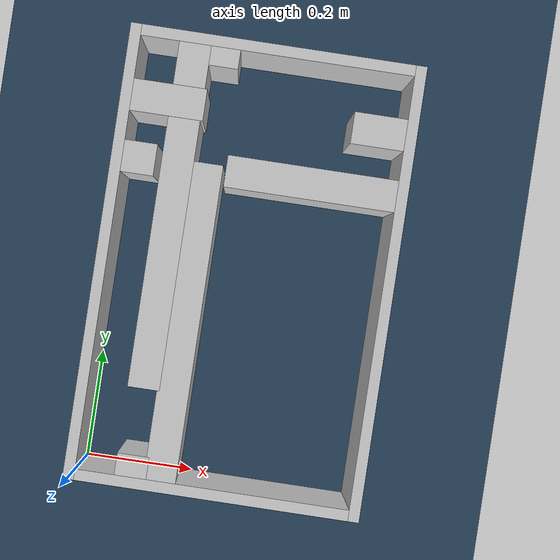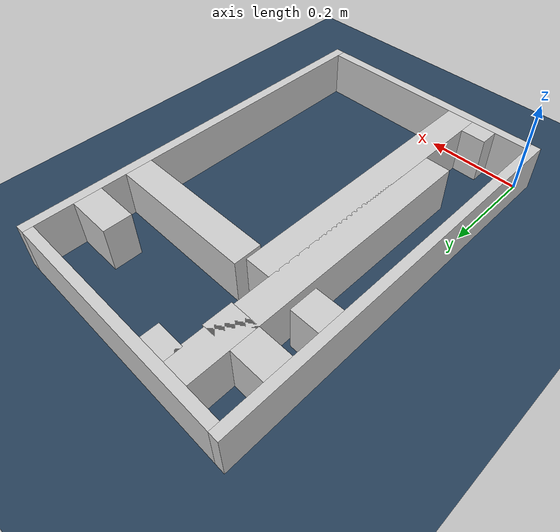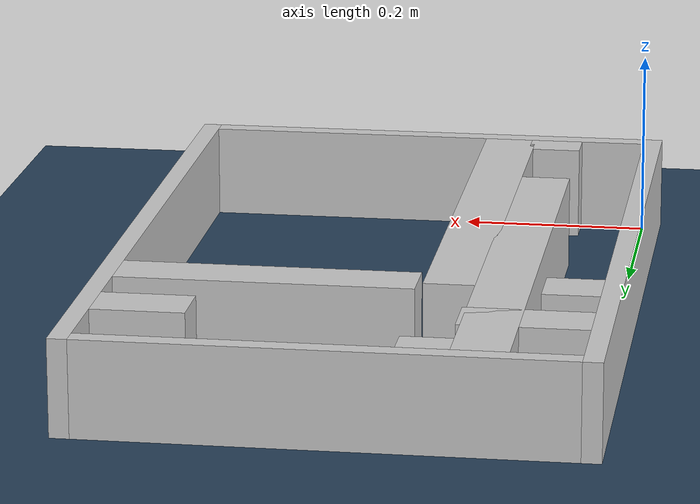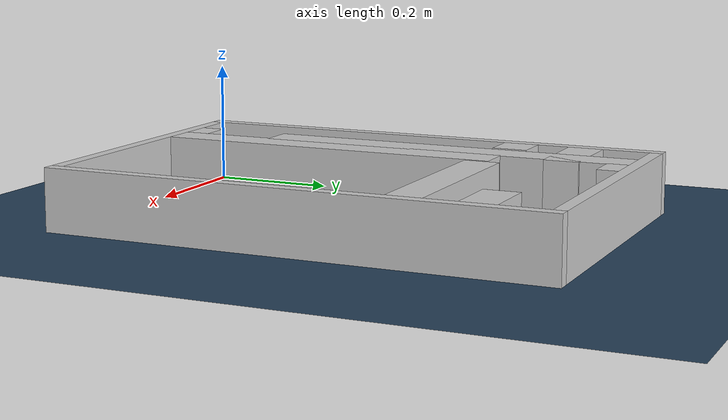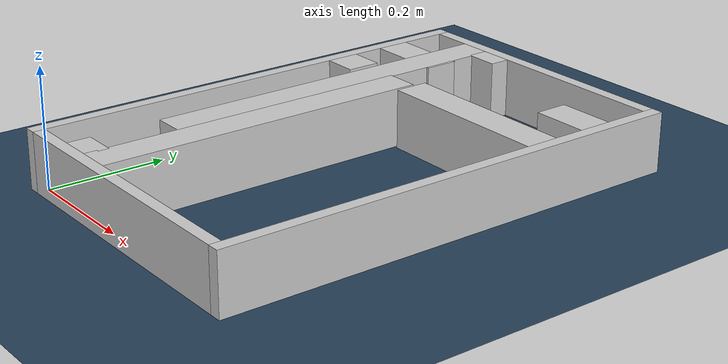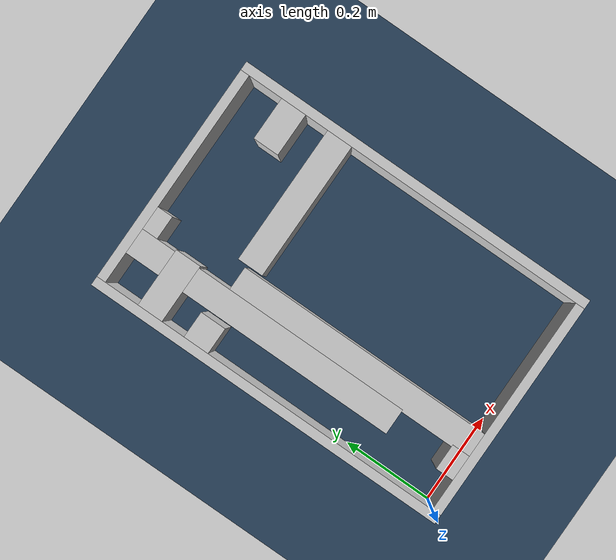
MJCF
<?xml version="1.0" ?>
<mujoco model="generated_real_template">
  <compiler angle="degree"/>
  <option timestep="0.002" integrator="implicitfast" iterations="100" cone="elliptic"/>
  <default>
    <geom density="1"/>
  </default>
  <asset>
    <texture builtin="gradient" height="3072" rgb1="0.3 0.5 0.7" rgb2="0 0 0" type="skybox" width="512"/>
    <texture builtin="checker" height="300" mark="edge" markrgb="0.8 0.8 0.8" name="groundplane" rgb1="0.2 0.3 0.4" rgb2="0.1 0.2 0.3" type="2d" width="300"/>
    <material name="groundplane" reflectance="0.2" texrepeat="5 5" texture="groundplane" texuniform="true"/>
  </asset>
  <worldbody>
    <light dir="0 0 -1" directional="true" pos="0 0 1.5"/>
    <geom name="floor" type="plane" condim="4" friction="0.5 0.005 0.001" material="groundplane" size="0 0 0.05"/>
    <body name="walls">
      <geom name="wall_boundary_left" type="box" condim="4" friction="1.0 0.005 0.0001" rgba="0.8 0.8 0.8 1" pos="-0.010000 0.387500 0.050000" euler="0 0 0.000000" size="0.010000 0.407500 0.050000"/>
      <geom name="wall_boundary_right" type="box" condim="4" friction="1.0 0.005 0.0001" rgba="0.8 0.8 0.8 1" pos="0.500000 0.387500 0.050000" euler="0 0 0.000000" size="0.010000 0.407500 0.050000"/>
      <geom name="wall_boundary_bottom" type="box" condim="4" friction="1.0 0.005 0.0001" rgba="0.8 0.8 0.8 1" pos="0.245000 -0.010000 0.050000" euler="0 0 0.000000" size="0.245000 0.010000 0.050000"/>
      <geom name="wall_boundary_top" type="box" condim="4" friction="1.0 0.005 0.0001" rgba="0.8 0.8 0.8 1" pos="0.245000 0.785000 0.050000" euler="0 0 0.000000" size="0.245000 0.010000 0.050000"/>
      <geom name="wall_inner_1_1" type="box" condim="4" friction="1.0 0.005 0.0001" rgba="0.8 0.8 0.8 1" pos="0.065551 0.669468 0.050000" euler="0 0 0.000000" size="0.065551 0.028500 0.050000"/>
      <geom name="wall_inner_1_2" type="box" condim="4" friction="1.0 0.005 0.0001" rgba="0.8 0.8 0.8 1" pos="0.442399 0.669468 0.050000" euler="0 0 0.000000" size="0.047601 0.028500 0.050000"/>
      <geom name="wall_inner_2_1" type="box" condim="4" friction="1.0 0.005 0.0001" rgba="0.8 0.8 0.8 1" pos="0.029423 0.560252 0.050000" euler="0 0 0.000000" size="0.029423 0.028500 0.050000"/>
      <geom name="wall_inner_2_2" type="box" condim="4" friction="1.0 0.005 0.0001" rgba="0.8 0.8 0.8 1" pos="0.337308 0.560252 0.050000" euler="0 0 0.000000" size="0.152692 0.028500 0.050000"/>
      <geom name="wall_inner_3_1" type="box" condim="4" friction="1.0 0.005 0.0001" rgba="0.8 0.8 0.8 1" pos="0.098237 0.019662 0.050000" euler="0 0 90.000000" size="0.019662 0.028500 0.050000"/>
      <geom name="wall_inner_3_2" type="box" condim="4" friction="1.0 0.005 0.0001" rgba="0.8 0.8 0.8 1" pos="0.098237 0.466449 0.050000" euler="0 0 90.000000" size="0.308551 0.028500 0.050000"/>
      <geom name="wall_inner_4_1" type="box" condim="4" friction="1.0 0.005 0.0001" rgba="0.8 0.8 0.8 1" pos="0.150676 0.284302 0.050000" euler="0 0 90.000000" size="0.284302 0.028500 0.050000"/>
      <geom name="wall_inner_4_2" type="box" condim="4" friction="1.0 0.005 0.0001" rgba="0.8 0.8 0.8 1" pos="0.150676 0.757776 0.050000" euler="0 0 90.000000" size="0.017224 0.028500 0.050000"/>
    </body>
  </worldbody>
</mujoco>
